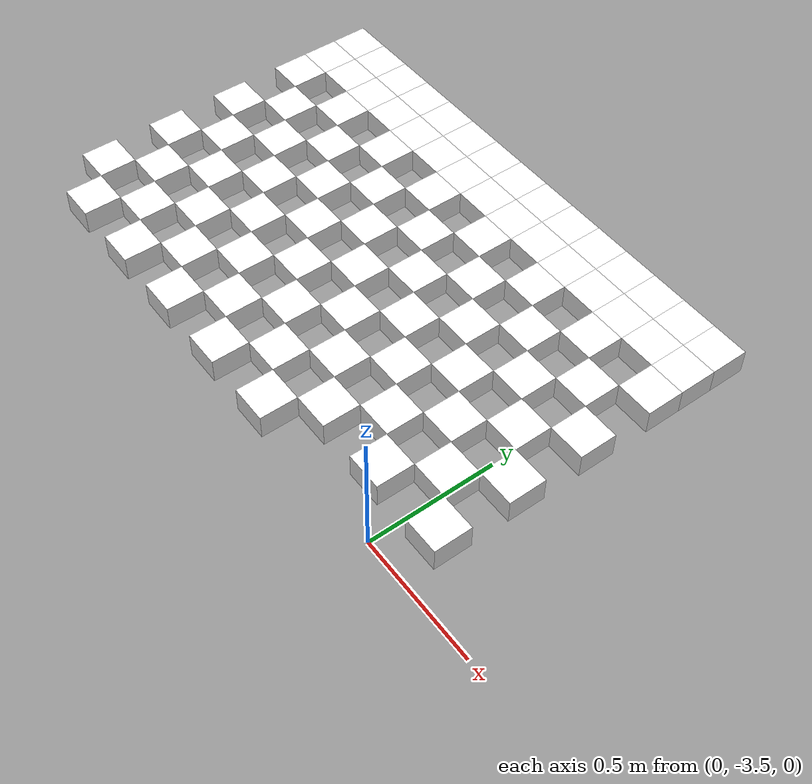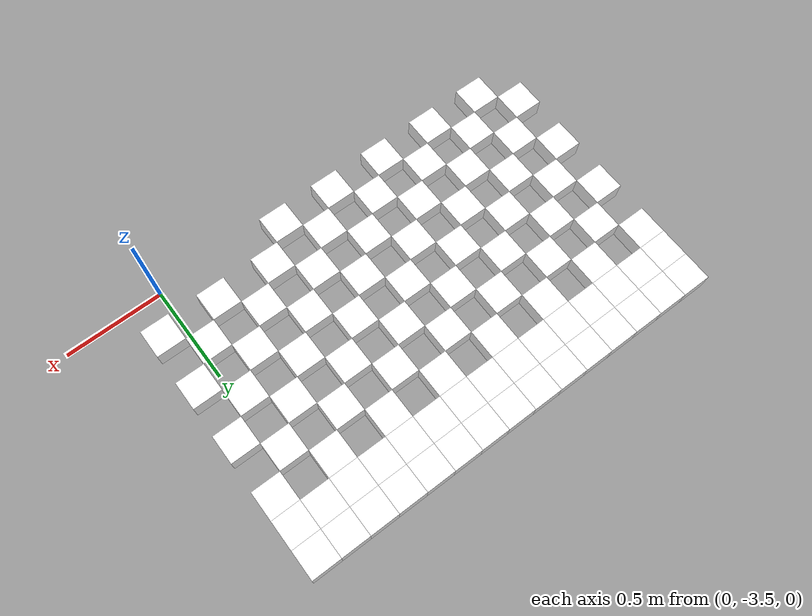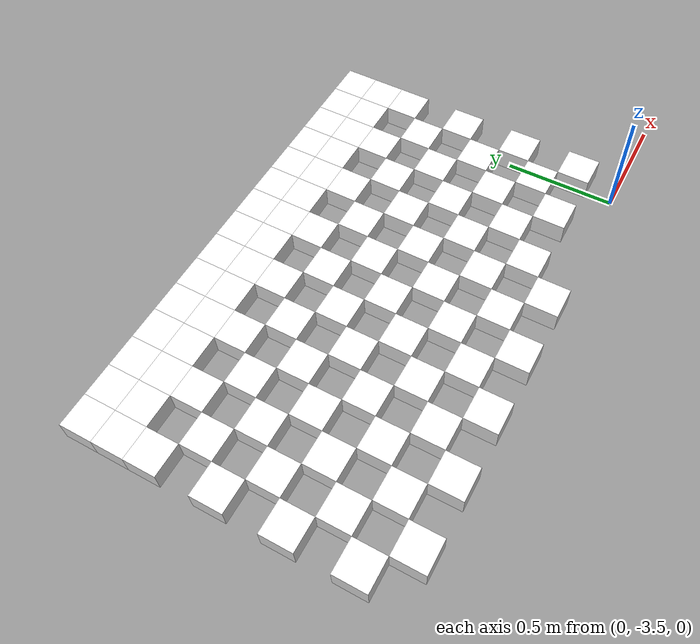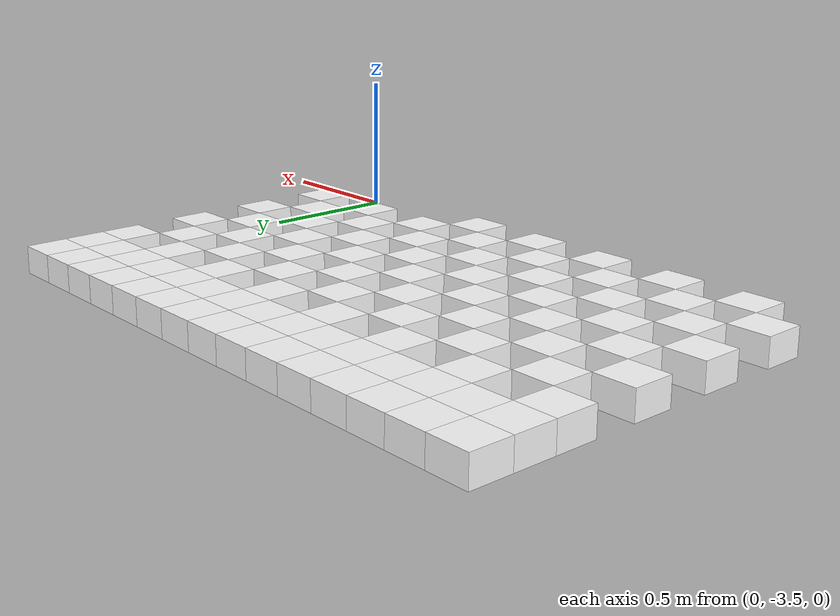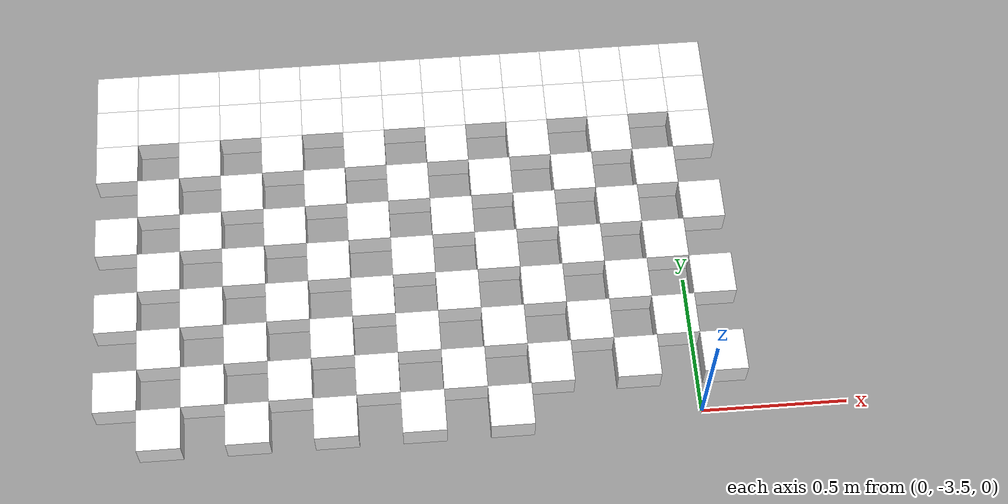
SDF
<sdf version="1.7">
 <world name="default">
  <include><uri>model://sun</uri></include>
  <model name="static_environment">
   <static>true</static>
   <link name="region_18">
    <pose>-2.0002402470383456 -2.099999989311362 0.0 0.0 0.0 4.7123</pose>
    <collision name="region_18_collision">
     <geometry><box><size>0.15 0.15 0.1</size></box></geometry>
     <surface><friction><ode><mu>1.0</mu><mu2>1.0</mu2></ode></friction></surface>
    </collision>
    <visual name="region_18_visual">
     <geometry><box><size>0.15 0.15 0.1</size></box></geometry>
     <material><ambient>1.0 1.0 1.0 1.0</ambient><diffuse>1.0 1.0 1.0 1.0</diffuse></material>
    </visual>
   </link>
   <link name="region_19">
    <pose>-2.0002535940960318 -2.2499999887175486 0.0 0.0 0.0 4.7123</pose>
    <collision name="region_19_collision">
     <geometry><box><size>0.15 0.15 0.1</size></box></geometry>
     <surface><friction><ode><mu>1.0</mu><mu2>1.0</mu2></ode></friction></surface>
    </collision>
    <visual name="region_19_visual">
     <geometry><box><size>0.15 0.15 0.1</size></box></geometry>
     <material><ambient>1.0 1.0 1.0 1.0</ambient><diffuse>1.0 1.0 1.0 1.0</diffuse></material>
    </visual>
   </link>
   <link name="region_38">
    <pose>-1.8502402476321589 -2.100013336369048 0.0 0.0 0.0 4.7123</pose>
    <collision name="region_38_collision">
     <geometry><box><size>0.15 0.15 0.1</size></box></geometry>
     <surface><friction><ode><mu>1.0</mu><mu2>1.0</mu2></ode></friction></surface>
    </collision>
    <visual name="region_38_visual">
     <geometry><box><size>0.15 0.15 0.1</size></box></geometry>
     <material><ambient>1.0 1.0 1.0 1.0</ambient><diffuse>1.0 1.0 1.0 1.0</diffuse></material>
    </visual>
   </link>
   <link name="region_39">
    <pose>-1.8502535946898448 -2.2500133357752343 0.0 0.0 0.0 4.7123</pose>
    <collision name="region_39_collision">
     <geometry><box><size>0.15 0.15 0.1</size></box></geometry>
     <surface><friction><ode><mu>1.0</mu><mu2>1.0</mu2></ode></friction></surface>
    </collision>
    <visual name="region_39_visual">
     <geometry><box><size>0.15 0.15 0.1</size></box></geometry>
     <material><ambient>1.0 1.0 1.0 1.0</ambient><diffuse>1.0 1.0 1.0 1.0</diffuse></material>
    </visual>
   </link>
   <link name="region_58">
    <pose>-1.7002402482259722 -2.1000266834267336 0.0 0.0 0.0 4.7123</pose>
    <collision name="region_58_collision">
     <geometry><box><size>0.15 0.15 0.1</size></box></geometry>
     <surface><friction><ode><mu>1.0</mu><mu2>1.0</mu2></ode></friction></surface>
    </collision>
    <visual name="region_58_visual">
     <geometry><box><size>0.15 0.15 0.1</size></box></geometry>
     <material><ambient>1.0 1.0 1.0 1.0</ambient><diffuse>1.0 1.0 1.0 1.0</diffuse></material>
    </visual>
   </link>
   <link name="region_59">
    <pose>-1.700253595283658 -2.2500266828329205 0.0 0.0 0.0 4.7123</pose>
    <collision name="region_59_collision">
     <geometry><box><size>0.15 0.15 0.1</size></box></geometry>
     <surface><friction><ode><mu>1.0</mu><mu2>1.0</mu2></ode></friction></surface>
    </collision>
    <visual name="region_59_visual">
     <geometry><box><size>0.15 0.15 0.1</size></box></geometry>
     <material><ambient>1.0 1.0 1.0 1.0</ambient><diffuse>1.0 1.0 1.0 1.0</diffuse></material>
    </visual>
   </link>
   <link name="region_78">
    <pose>-1.5502402488197853 -2.1000400304844193 0.0 0.0 0.0 4.7123</pose>
    <collision name="region_78_collision">
     <geometry><box><size>0.15 0.15 0.1</size></box></geometry>
     <surface><friction><ode><mu>1.0</mu><mu2>1.0</mu2></ode></friction></surface>
    </collision>
    <visual name="region_78_visual">
     <geometry><box><size>0.15 0.15 0.1</size></box></geometry>
     <material><ambient>1.0 1.0 1.0 1.0</ambient><diffuse>1.0 1.0 1.0 1.0</diffuse></material>
    </visual>
   </link>
   <link name="region_79">
    <pose>-1.5502535958774712 -2.2500400298906063 0.0 0.0 0.0 4.7123</pose>
    <collision name="region_79_collision">
     <geometry><box><size>0.15 0.15 0.1</size></box></geometry>
     <surface><friction><ode><mu>1.0</mu><mu2>1.0</mu2></ode></friction></surface>
    </collision>
    <visual name="region_79_visual">
     <geometry><box><size>0.15 0.15 0.1</size></box></geometry>
     <material><ambient>1.0 1.0 1.0 1.0</ambient><diffuse>1.0 1.0 1.0 1.0</diffuse></material>
    </visual>
   </link>
   <link name="region_98">
    <pose>-1.4002402494135986 -2.1000533775421055 0.0 0.0 0.0 4.7123</pose>
    <collision name="region_98_collision">
     <geometry><box><size>0.15 0.15 0.1</size></box></geometry>
     <surface><friction><ode><mu>1.0</mu><mu2>1.0</mu2></ode></friction></surface>
    </collision>
    <visual name="region_98_visual">
     <geometry><box><size>0.15 0.15 0.1</size></box></geometry>
     <material><ambient>1.0 1.0 1.0 1.0</ambient><diffuse>1.0 1.0 1.0 1.0</diffuse></material>
    </visual>
   </link>
   <link name="region_99">
    <pose>-1.4002535964712846 -2.250053376948292 0.0 0.0 0.0 4.7123</pose>
    <collision name="region_99_collision">
     <geometry><box><size>0.15 0.15 0.1</size></box></geometry>
     <surface><friction><ode><mu>1.0</mu><mu2>1.0</mu2></ode></friction></surface>
    </collision>
    <visual name="region_99_visual">
     <geometry><box><size>0.15 0.15 0.1</size></box></geometry>
     <material><ambient>1.0 1.0 1.0 1.0</ambient><diffuse>1.0 1.0 1.0 1.0</diffuse></material>
    </visual>
   </link>
   <link name="region_118">
    <pose>-1.2502402500074117 -2.1000667245997913 0.0 0.0 0.0 4.7123</pose>
    <collision name="region_118_collision">
     <geometry><box><size>0.15 0.15 0.1</size></box></geometry>
     <surface><friction><ode><mu>1.0</mu><mu2>1.0</mu2></ode></friction></surface>
    </collision>
    <visual name="region_118_visual">
     <geometry><box><size>0.15 0.15 0.1</size></box></geometry>
     <material><ambient>1.0 1.0 1.0 1.0</ambient><diffuse>1.0 1.0 1.0 1.0</diffuse></material>
    </visual>
   </link>
   <link name="region_119">
    <pose>-1.2502535970650976 -2.250066724005978 0.0 0.0 0.0 4.7123</pose>
    <collision name="region_119_collision">
     <geometry><box><size>0.15 0.15 0.1</size></box></geometry>
     <surface><friction><ode><mu>1.0</mu><mu2>1.0</mu2></ode></friction></surface>
    </collision>
    <visual name="region_119_visual">
     <geometry><box><size>0.15 0.15 0.1</size></box></geometry>
     <material><ambient>1.0 1.0 1.0 1.0</ambient><diffuse>1.0 1.0 1.0 1.0</diffuse></material>
    </visual>
   </link>
   <link name="region_138">
    <pose>-1.100240250601225 -2.100080071657477 0.0 0.0 0.0 4.7123</pose>
    <collision name="region_138_collision">
     <geometry><box><size>0.15 0.15 0.1</size></box></geometry>
     <surface><friction><ode><mu>1.0</mu><mu2>1.0</mu2></ode></friction></surface>
    </collision>
    <visual name="region_138_visual">
     <geometry><box><size>0.15 0.15 0.1</size></box></geometry>
     <material><ambient>1.0 1.0 1.0 1.0</ambient><diffuse>1.0 1.0 1.0 1.0</diffuse></material>
    </visual>
   </link>
   <link name="region_139">
    <pose>-1.1002535976589107 -2.250080071063664 0.0 0.0 0.0 4.7123</pose>
    <collision name="region_139_collision">
     <geometry><box><size>0.15 0.15 0.1</size></box></geometry>
     <surface><friction><ode><mu>1.0</mu><mu2>1.0</mu2></ode></friction></surface>
    </collision>
    <visual name="region_139_visual">
     <geometry><box><size>0.15 0.15 0.1</size></box></geometry>
     <material><ambient>1.0 1.0 1.0 1.0</ambient><diffuse>1.0 1.0 1.0 1.0</diffuse></material>
    </visual>
   </link>
   <link name="region_158">
    <pose>-0.9502402511950381 -2.100093418715163 0.0 0.0 0.0 4.7123</pose>
    <collision name="region_158_collision">
     <geometry><box><size>0.15 0.15 0.1</size></box></geometry>
     <surface><friction><ode><mu>1.0</mu><mu2>1.0</mu2></ode></friction></surface>
    </collision>
    <visual name="region_158_visual">
     <geometry><box><size>0.15 0.15 0.1</size></box></geometry>
     <material><ambient>1.0 1.0 1.0 1.0</ambient><diffuse>1.0 1.0 1.0 1.0</diffuse></material>
    </visual>
   </link>
   <link name="region_159">
    <pose>-0.9502535982527238 -2.2500934181213497 0.0 0.0 0.0 4.7123</pose>
    <collision name="region_159_collision">
     <geometry><box><size>0.15 0.15 0.1</size></box></geometry>
     <surface><friction><ode><mu>1.0</mu><mu2>1.0</mu2></ode></friction></surface>
    </collision>
    <visual name="region_159_visual">
     <geometry><box><size>0.15 0.15 0.1</size></box></geometry>
     <material><ambient>1.0 1.0 1.0 1.0</ambient><diffuse>1.0 1.0 1.0 1.0</diffuse></material>
    </visual>
   </link>
   <link name="region_178">
    <pose>-0.8002402517888514 -2.100106765772849 0.0 0.0 0.0 4.7123</pose>
    <collision name="region_178_collision">
     <geometry><box><size>0.15 0.15 0.1</size></box></geometry>
     <surface><friction><ode><mu>1.0</mu><mu2>1.0</mu2></ode></friction></surface>
    </collision>
    <visual name="region_178_visual">
     <geometry><box><size>0.15 0.15 0.1</size></box></geometry>
     <material><ambient>1.0 1.0 1.0 1.0</ambient><diffuse>1.0 1.0 1.0 1.0</diffuse></material>
    </visual>
   </link>
   <link name="region_179">
    <pose>-0.8002535988465371 -2.250106765179036 0.0 0.0 0.0 4.7123</pose>
    <collision name="region_179_collision">
     <geometry><box><size>0.15 0.15 0.1</size></box></geometry>
     <surface><friction><ode><mu>1.0</mu><mu2>1.0</mu2></ode></friction></surface>
    </collision>
    <visual name="region_179_visual">
     <geometry><box><size>0.15 0.15 0.1</size></box></geometry>
     <material><ambient>1.0 1.0 1.0 1.0</ambient><diffuse>1.0 1.0 1.0 1.0</diffuse></material>
    </visual>
   </link>
   <link name="region_198">
    <pose>-0.6502402523826645 -2.1001201128305347 0.0 0.0 0.0 4.7123</pose>
    <collision name="region_198_collision">
     <geometry><box><size>0.15 0.15 0.1</size></box></geometry>
     <surface><friction><ode><mu>1.0</mu><mu2>1.0</mu2></ode></friction></surface>
    </collision>
    <visual name="region_198_visual">
     <geometry><box><size>0.15 0.15 0.1</size></box></geometry>
     <material><ambient>1.0 1.0 1.0 1.0</ambient><diffuse>1.0 1.0 1.0 1.0</diffuse></material>
    </visual>
   </link>
   <link name="region_199">
    <pose>-0.6502535994403502 -2.2501201122367216 0.0 0.0 0.0 4.7123</pose>
    <collision name="region_199_collision">
     <geometry><box><size>0.15 0.15 0.1</size></box></geometry>
     <surface><friction><ode><mu>1.0</mu><mu2>1.0</mu2></ode></friction></surface>
    </collision>
    <visual name="region_199_visual">
     <geometry><box><size>0.15 0.15 0.1</size></box></geometry>
     <material><ambient>1.0 1.0 1.0 1.0</ambient><diffuse>1.0 1.0 1.0 1.0</diffuse></material>
    </visual>
   </link>
   <link name="region_218">
    <pose>-0.5002402529764778 -2.100133459888221 0.0 0.0 0.0 4.7123</pose>
    <collision name="region_218_collision">
     <geometry><box><size>0.15 0.15 0.1</size></box></geometry>
     <surface><friction><ode><mu>1.0</mu><mu2>1.0</mu2></ode></friction></surface>
    </collision>
    <visual name="region_218_visual">
     <geometry><box><size>0.15 0.15 0.1</size></box></geometry>
     <material><ambient>1.0 1.0 1.0 1.0</ambient><diffuse>1.0 1.0 1.0 1.0</diffuse></material>
    </visual>
   </link>
   <link name="region_219">
    <pose>-0.5002536000341635 -2.2501334592944073 0.0 0.0 0.0 4.7123</pose>
    <collision name="region_219_collision">
     <geometry><box><size>0.15 0.15 0.1</size></box></geometry>
     <surface><friction><ode><mu>1.0</mu><mu2>1.0</mu2></ode></friction></surface>
    </collision>
    <visual name="region_219_visual">
     <geometry><box><size>0.15 0.15 0.1</size></box></geometry>
     <material><ambient>1.0 1.0 1.0 1.0</ambient><diffuse>1.0 1.0 1.0 1.0</diffuse></material>
    </visual>
   </link>
   <link name="region_238">
    <pose>-0.3502402535702911 -2.1001468069459066 0.0 0.0 0.0 4.7123</pose>
    <collision name="region_238_collision">
     <geometry><box><size>0.15 0.15 0.1</size></box></geometry>
     <surface><friction><ode><mu>1.0</mu><mu2>1.0</mu2></ode></friction></surface>
    </collision>
    <visual name="region_238_visual">
     <geometry><box><size>0.15 0.15 0.1</size></box></geometry>
     <material><ambient>1.0 1.0 1.0 1.0</ambient><diffuse>1.0 1.0 1.0 1.0</diffuse></material>
    </visual>
   </link>
   <link name="region_239">
    <pose>-0.35025360062797684 -2.250146806352093 0.0 0.0 0.0 4.7123</pose>
    <collision name="region_239_collision">
     <geometry><box><size>0.15 0.15 0.1</size></box></geometry>
     <surface><friction><ode><mu>1.0</mu><mu2>1.0</mu2></ode></friction></surface>
    </collision>
    <visual name="region_239_visual">
     <geometry><box><size>0.15 0.15 0.1</size></box></geometry>
     <material><ambient>1.0 1.0 1.0 1.0</ambient><diffuse>1.0 1.0 1.0 1.0</diffuse></material>
    </visual>
   </link>
   <link name="region_258">
    <pose>-0.2002402541641044 -2.1001601540035923 0.0 0.0 0.0 4.7123</pose>
    <collision name="region_258_collision">
     <geometry><box><size>0.15 0.15 0.1</size></box></geometry>
     <surface><friction><ode><mu>1.0</mu><mu2>1.0</mu2></ode></friction></surface>
    </collision>
    <visual name="region_258_visual">
     <geometry><box><size>0.15 0.15 0.1</size></box></geometry>
     <material><ambient>1.0 1.0 1.0 1.0</ambient><diffuse>1.0 1.0 1.0 1.0</diffuse></material>
    </visual>
   </link>
   <link name="region_259">
    <pose>-0.20025360122179015 -2.2501601534097793 0.0 0.0 0.0 4.7123</pose>
    <collision name="region_259_collision">
     <geometry><box><size>0.15 0.15 0.1</size></box></geometry>
     <surface><friction><ode><mu>1.0</mu><mu2>1.0</mu2></ode></friction></surface>
    </collision>
    <visual name="region_259_visual">
     <geometry><box><size>0.15 0.15 0.1</size></box></geometry>
     <material><ambient>1.0 1.0 1.0 1.0</ambient><diffuse>1.0 1.0 1.0 1.0</diffuse></material>
    </visual>
   </link>
   <link name="region_278">
    <pose>-0.05024025475791771 -2.1001735010612785 0.0 0.0 0.0 4.7123</pose>
    <collision name="region_278_collision">
     <geometry><box><size>0.15 0.15 0.1</size></box></geometry>
     <surface><friction><ode><mu>1.0</mu><mu2>1.0</mu2></ode></friction></surface>
    </collision>
    <visual name="region_278_visual">
     <geometry><box><size>0.15 0.15 0.1</size></box></geometry>
     <material><ambient>1.0 1.0 1.0 1.0</ambient><diffuse>1.0 1.0 1.0 1.0</diffuse></material>
    </visual>
   </link>
   <link name="region_279">
    <pose>-0.050253601815603455 -2.250173500467465 0.0 0.0 0.0 4.7123</pose>
    <collision name="region_279_collision">
     <geometry><box><size>0.15 0.15 0.1</size></box></geometry>
     <surface><friction><ode><mu>1.0</mu><mu2>1.0</mu2></ode></friction></surface>
    </collision>
    <visual name="region_279_visual">
     <geometry><box><size>0.15 0.15 0.1</size></box></geometry>
     <material><ambient>1.0 1.0 1.0 1.0</ambient><diffuse>1.0 1.0 1.0 1.0</diffuse></material>
    </visual>
   </link>
   <link name="region_298">
    <pose>0.09975974464826942 -2.1001868481189643 0.0 0.0 0.0 4.7123</pose>
    <collision name="region_298_collision">
     <geometry><box><size>0.15 0.15 0.1</size></box></geometry>
     <surface><friction><ode><mu>1.0</mu><mu2>1.0</mu2></ode></friction></surface>
    </collision>
    <visual name="region_298_visual">
     <geometry><box><size>0.15 0.15 0.1</size></box></geometry>
     <material><ambient>1.0 1.0 1.0 1.0</ambient><diffuse>1.0 1.0 1.0 1.0</diffuse></material>
    </visual>
   </link>
   <link name="region_299">
    <pose>0.09974639759058324 -2.2501868475251507 0.0 0.0 0.0 4.7123</pose>
    <collision name="region_299_collision">
     <geometry><box><size>0.15 0.15 0.1</size></box></geometry>
     <surface><friction><ode><mu>1.0</mu><mu2>1.0</mu2></ode></friction></surface>
    </collision>
    <visual name="region_299_visual">
     <geometry><box><size>0.15 0.15 0.1</size></box></geometry>
     <material><ambient>1.0 1.0 1.0 1.0</ambient><diffuse>1.0 1.0 1.0 1.0</diffuse></material>
    </visual>
   </link>
   <link name="region_600">
    <pose>-2.0002669411537175 -2.3999999881237364 0.0 0.0 0.0 4.7123</pose>
    <collision name="region_600_collision">
     <geometry><box><size>0.15 0.15 0.1</size></box></geometry>
     <surface><friction><ode><mu>1.0</mu><mu2>1.0</mu2></ode></friction></surface>
    </collision>
    <visual name="region_600_visual">
     <geometry><box><size>0.15 0.15 0.1</size></box></geometry>
     <material><ambient>1.0 1.0 1.0 1.0</ambient><diffuse>1.0 1.0 1.0 1.0</diffuse></material>
    </visual>
   </link>
   <link name="region_601">
    <pose>-2.0002936352690894 -2.6999999869361098 0.0 0.0 0.0 4.7123</pose>
    <collision name="region_601_collision">
     <geometry><box><size>0.15 0.15 0.1</size></box></geometry>
     <surface><friction><ode><mu>1.0</mu><mu2>1.0</mu2></ode></friction></surface>
    </collision>
    <visual name="region_601_visual">
     <geometry><box><size>0.15 0.15 0.1</size></box></geometry>
     <material><ambient>1.0 1.0 1.0 1.0</ambient><diffuse>1.0 1.0 1.0 1.0</diffuse></material>
    </visual>
   </link>
   <link name="region_602">
    <pose>-2.000320329384461 -2.999999985748483 0.0 0.0 0.0 4.7123</pose>
    <collision name="region_602_collision">
     <geometry><box><size>0.15 0.15 0.1</size></box></geometry>
     <surface><friction><ode><mu>1.0</mu><mu2>1.0</mu2></ode></friction></surface>
    </collision>
    <visual name="region_602_visual">
     <geometry><box><size>0.15 0.15 0.1</size></box></geometry>
     <material><ambient>1.0 1.0 1.0 1.0</ambient><diffuse>1.0 1.0 1.0 1.0</diffuse></material>
    </visual>
   </link>
   <link name="region_603">
    <pose>-2.000347023499833 -3.2999999845608565 0.0 0.0 0.0 4.7123</pose>
    <collision name="region_603_collision">
     <geometry><box><size>0.15 0.15 0.1</size></box></geometry>
     <surface><friction><ode><mu>1.0</mu><mu2>1.0</mu2></ode></friction></surface>
    </collision>
    <visual name="region_603_visual">
     <geometry><box><size>0.15 0.15 0.1</size></box></geometry>
     <material><ambient>1.0 1.0 1.0 1.0</ambient><diffuse>1.0 1.0 1.0 1.0</diffuse></material>
    </visual>
   </link>
   <link name="region_605">
    <pose>-1.8502802888052166 -2.550013334587609 0.0 0.0 0.0 4.7123</pose>
    <collision name="region_605_collision">
     <geometry><box><size>0.15 0.15 0.1</size></box></geometry>
     <surface><friction><ode><mu>1.0</mu><mu2>1.0</mu2></ode></friction></surface>
    </collision>
    <visual name="region_605_visual">
     <geometry><box><size>0.15 0.15 0.1</size></box></geometry>
     <material><ambient>1.0 1.0 1.0 1.0</ambient><diffuse>1.0 1.0 1.0 1.0</diffuse></material>
    </visual>
   </link>
   <link name="region_606">
    <pose>-1.8503069829205883 -2.8500133333999824 0.0 0.0 0.0 4.7123</pose>
    <collision name="region_606_collision">
     <geometry><box><size>0.15 0.15 0.1</size></box></geometry>
     <surface><friction><ode><mu>1.0</mu><mu2>1.0</mu2></ode></friction></surface>
    </collision>
    <visual name="region_606_visual">
     <geometry><box><size>0.15 0.15 0.1</size></box></geometry>
     <material><ambient>1.0 1.0 1.0 1.0</ambient><diffuse>1.0 1.0 1.0 1.0</diffuse></material>
    </visual>
   </link>
   <link name="region_607">
    <pose>-1.8503336770359602 -3.150013332212356 0.0 0.0 0.0 4.7123</pose>
    <collision name="region_607_collision">
     <geometry><box><size>0.15 0.15 0.1</size></box></geometry>
     <surface><friction><ode><mu>1.0</mu><mu2>1.0</mu2></ode></friction></surface>
    </collision>
    <visual name="region_607_visual">
     <geometry><box><size>0.15 0.15 0.1</size></box></geometry>
     <material><ambient>1.0 1.0 1.0 1.0</ambient><diffuse>1.0 1.0 1.0 1.0</diffuse></material>
    </visual>
   </link>
   <link name="region_608">
    <pose>-1.850360371151332 -3.45001333102473 0.0 0.0 0.0 4.7123</pose>
    <collision name="region_608_collision">
     <geometry><box><size>0.15 0.15 0.1</size></box></geometry>
     <surface><friction><ode><mu>1.0</mu><mu2>1.0</mu2></ode></friction></surface>
    </collision>
    <visual name="region_608_visual">
     <geometry><box><size>0.15 0.15 0.1</size></box></geometry>
     <material><ambient>1.0 1.0 1.0 1.0</ambient><diffuse>1.0 1.0 1.0 1.0</diffuse></material>
    </visual>
   </link>
   <link name="region_610">
    <pose>-1.700266942341344 -2.400026682239108 0.0 0.0 0.0 4.7123</pose>
    <collision name="region_610_collision">
     <geometry><box><size>0.15 0.15 0.1</size></box></geometry>
     <surface><friction><ode><mu>1.0</mu><mu2>1.0</mu2></ode></friction></surface>
    </collision>
    <visual name="region_610_visual">
     <geometry><box><size>0.15 0.15 0.1</size></box></geometry>
     <material><ambient>1.0 1.0 1.0 1.0</ambient><diffuse>1.0 1.0 1.0 1.0</diffuse></material>
    </visual>
   </link>
   <link name="region_611">
    <pose>-1.7002936364567156 -2.7000266810514817 0.0 0.0 0.0 4.7123</pose>
    <collision name="region_611_collision">
     <geometry><box><size>0.15 0.15 0.1</size></box></geometry>
     <surface><friction><ode><mu>1.0</mu><mu2>1.0</mu2></ode></friction></surface>
    </collision>
    <visual name="region_611_visual">
     <geometry><box><size>0.15 0.15 0.1</size></box></geometry>
     <material><ambient>1.0 1.0 1.0 1.0</ambient><diffuse>1.0 1.0 1.0 1.0</diffuse></material>
    </visual>
   </link>
   <link name="region_612">
    <pose>-1.7003203305720875 -3.000026679863855 0.0 0.0 0.0 4.7123</pose>
    <collision name="region_612_collision">
     <geometry><box><size>0.15 0.15 0.1</size></box></geometry>
     <surface><friction><ode><mu>1.0</mu><mu2>1.0</mu2></ode></friction></surface>
    </collision>
    <visual name="region_612_visual">
     <geometry><box><size>0.15 0.15 0.1</size></box></geometry>
     <material><ambient>1.0 1.0 1.0 1.0</ambient><diffuse>1.0 1.0 1.0 1.0</diffuse></material>
    </visual>
   </link>
   <link name="region_613">
    <pose>-1.7003470246874592 -3.3000266786762285 0.0 0.0 0.0 4.7123</pose>
    <collision name="region_613_collision">
     <geometry><box><size>0.15 0.15 0.1</size></box></geometry>
     <surface><friction><ode><mu>1.0</mu><mu2>1.0</mu2></ode></friction></surface>
    </collision>
    <visual name="region_613_visual">
     <geometry><box><size>0.15 0.15 0.1</size></box></geometry>
     <material><ambient>1.0 1.0 1.0 1.0</ambient><diffuse>1.0 1.0 1.0 1.0</diffuse></material>
    </visual>
   </link>
   <link name="region_615">
    <pose>-1.550280289992843 -2.5500400287029805 0.0 0.0 0.0 4.7123</pose>
    <collision name="region_615_collision">
     <geometry><box><size>0.15 0.15 0.1</size></box></geometry>
     <surface><friction><ode><mu>1.0</mu><mu2>1.0</mu2></ode></friction></surface>
    </collision>
    <visual name="region_615_visual">
     <geometry><box><size>0.15 0.15 0.1</size></box></geometry>
     <material><ambient>1.0 1.0 1.0 1.0</ambient><diffuse>1.0 1.0 1.0 1.0</diffuse></material>
    </visual>
   </link>
   <link name="region_616">
    <pose>-1.5503069841082149 -2.850040027515354 0.0 0.0 0.0 4.7123</pose>
    <collision name="region_616_collision">
     <geometry><box><size>0.15 0.15 0.1</size></box></geometry>
     <surface><friction><ode><mu>1.0</mu><mu2>1.0</mu2></ode></friction></surface>
    </collision>
    <visual name="region_616_visual">
     <geometry><box><size>0.15 0.15 0.1</size></box></geometry>
     <material><ambient>1.0 1.0 1.0 1.0</ambient><diffuse>1.0 1.0 1.0 1.0</diffuse></material>
    </visual>
   </link>
   <link name="region_617">
    <pose>-1.5503336782235864 -3.1500400263277277 0.0 0.0 0.0 4.7123</pose>
    <collision name="region_617_collision">
     <geometry><box><size>0.15 0.15 0.1</size></box></geometry>
     <surface><friction><ode><mu>1.0</mu><mu2>1.0</mu2></ode></friction></surface>
    </collision>
    <visual name="region_617_visual">
     <geometry><box><size>0.15 0.15 0.1</size></box></geometry>
     <material><ambient>1.0 1.0 1.0 1.0</ambient><diffuse>1.0 1.0 1.0 1.0</diffuse></material>
    </visual>
   </link>
   <link name="region_618">
    <pose>-1.5503603723389583 -3.4500400251401016 0.0 0.0 0.0 4.7123</pose>
    <collision name="region_618_collision">
     <geometry><box><size>0.15 0.15 0.1</size></box></geometry>
     <surface><friction><ode><mu>1.0</mu><mu2>1.0</mu2></ode></friction></surface>
    </collision>
    <visual name="region_618_visual">
     <geometry><box><size>0.15 0.15 0.1</size></box></geometry>
     <material><ambient>1.0 1.0 1.0 1.0</ambient><diffuse>1.0 1.0 1.0 1.0</diffuse></material>
    </visual>
   </link>
   <link name="region_620">
    <pose>-1.4002669435289703 -2.40005337635448 0.0 0.0 0.0 4.7123</pose>
    <collision name="region_620_collision">
     <geometry><box><size>0.15 0.15 0.1</size></box></geometry>
     <surface><friction><ode><mu>1.0</mu><mu2>1.0</mu2></ode></friction></surface>
    </collision>
    <visual name="region_620_visual">
     <geometry><box><size>0.15 0.15 0.1</size></box></geometry>
     <material><ambient>1.0 1.0 1.0 1.0</ambient><diffuse>1.0 1.0 1.0 1.0</diffuse></material>
    </visual>
   </link>
   <link name="region_621">
    <pose>-1.4002936376443422 -2.700053375166853 0.0 0.0 0.0 4.7123</pose>
    <collision name="region_621_collision">
     <geometry><box><size>0.15 0.15 0.1</size></box></geometry>
     <surface><friction><ode><mu>1.0</mu><mu2>1.0</mu2></ode></friction></surface>
    </collision>
    <visual name="region_621_visual">
     <geometry><box><size>0.15 0.15 0.1</size></box></geometry>
     <material><ambient>1.0 1.0 1.0 1.0</ambient><diffuse>1.0 1.0 1.0 1.0</diffuse></material>
    </visual>
   </link>
   <link name="region_622">
    <pose>-1.4003203317597137 -3.0000533739792266 0.0 0.0 0.0 4.7123</pose>
    <collision name="region_622_collision">
     <geometry><box><size>0.15 0.15 0.1</size></box></geometry>
     <surface><friction><ode><mu>1.0</mu><mu2>1.0</mu2></ode></friction></surface>
    </collision>
    <visual name="region_622_visual">
     <geometry><box><size>0.15 0.15 0.1</size></box></geometry>
     <material><ambient>1.0 1.0 1.0 1.0</ambient><diffuse>1.0 1.0 1.0 1.0</diffuse></material>
    </visual>
   </link>
   <link name="region_623">
    <pose>-1.4003470258750856 -3.3000533727916 0.0 0.0 0.0 4.7123</pose>
    <collision name="region_623_collision">
     <geometry><box><size>0.15 0.15 0.1</size></box></geometry>
     <surface><friction><ode><mu>1.0</mu><mu2>1.0</mu2></ode></friction></surface>
    </collision>
    <visual name="region_623_visual">
     <geometry><box><size>0.15 0.15 0.1</size></box></geometry>
     <material><ambient>1.0 1.0 1.0 1.0</ambient><diffuse>1.0 1.0 1.0 1.0</diffuse></material>
    </visual>
   </link>
   <link name="region_625">
    <pose>-1.2502802911804691 -2.5500667228183524 0.0 0.0 0.0 4.7123</pose>
    <collision name="region_625_collision">
     <geometry><box><size>0.15 0.15 0.1</size></box></geometry>
     <surface><friction><ode><mu>1.0</mu><mu2>1.0</mu2></ode></friction></surface>
    </collision>
    <visual name="region_625_visual">
     <geometry><box><size>0.15 0.15 0.1</size></box></geometry>
     <material><ambient>1.0 1.0 1.0 1.0</ambient><diffuse>1.0 1.0 1.0 1.0</diffuse></material>
    </visual>
   </link>
   <link name="region_626">
    <pose>-1.250306985295841 -2.850066721630726 0.0 0.0 0.0 4.7123</pose>
    <collision name="region_626_collision">
     <geometry><box><size>0.15 0.15 0.1</size></box></geometry>
     <surface><friction><ode><mu>1.0</mu><mu2>1.0</mu2></ode></friction></surface>
    </collision>
    <visual name="region_626_visual">
     <geometry><box><size>0.15 0.15 0.1</size></box></geometry>
     <material><ambient>1.0 1.0 1.0 1.0</ambient><diffuse>1.0 1.0 1.0 1.0</diffuse></material>
    </visual>
   </link>
   <link name="region_627">
    <pose>-1.2503336794112128 -3.150066720443099 0.0 0.0 0.0 4.7123</pose>
    <collision name="region_627_collision">
     <geometry><box><size>0.15 0.15 0.1</size></box></geometry>
     <surface><friction><ode><mu>1.0</mu><mu2>1.0</mu2></ode></friction></surface>
    </collision>
    <visual name="region_627_visual">
     <geometry><box><size>0.15 0.15 0.1</size></box></geometry>
     <material><ambient>1.0 1.0 1.0 1.0</ambient><diffuse>1.0 1.0 1.0 1.0</diffuse></material>
    </visual>
   </link>
   <link name="region_628">
    <pose>-1.2503603735265845 -3.450066719255473 0.0 0.0 0.0 4.7123</pose>
    <collision name="region_628_collision">
     <geometry><box><size>0.15 0.15 0.1</size></box></geometry>
     <surface><friction><ode><mu>1.0</mu><mu2>1.0</mu2></ode></friction></surface>
    </collision>
    <visual name="region_628_visual">
     <geometry><box><size>0.15 0.15 0.1</size></box></geometry>
     <material><ambient>1.0 1.0 1.0 1.0</ambient><diffuse>1.0 1.0 1.0 1.0</diffuse></material>
    </visual>
   </link>
   <link name="region_630">
    <pose>-1.1002669447165965 -2.4000800704698517 0.0 0.0 0.0 4.7123</pose>
    <collision name="region_630_collision">
     <geometry><box><size>0.15 0.15 0.1</size></box></geometry>
     <surface><friction><ode><mu>1.0</mu><mu2>1.0</mu2></ode></friction></surface>
    </collision>
    <visual name="region_630_visual">
     <geometry><box><size>0.15 0.15 0.1</size></box></geometry>
     <material><ambient>1.0 1.0 1.0 1.0</ambient><diffuse>1.0 1.0 1.0 1.0</diffuse></material>
    </visual>
   </link>
   <link name="region_631">
    <pose>-1.1002936388319684 -2.700080069282225 0.0 0.0 0.0 4.7123</pose>
    <collision name="region_631_collision">
     <geometry><box><size>0.15 0.15 0.1</size></box></geometry>
     <surface><friction><ode><mu>1.0</mu><mu2>1.0</mu2></ode></friction></surface>
    </collision>
    <visual name="region_631_visual">
     <geometry><box><size>0.15 0.15 0.1</size></box></geometry>
     <material><ambient>1.0 1.0 1.0 1.0</ambient><diffuse>1.0 1.0 1.0 1.0</diffuse></material>
    </visual>
   </link>
   <link name="region_632">
    <pose>-1.10032033294734 -3.0000800680945985 0.0 0.0 0.0 4.7123</pose>
    <collision name="region_632_collision">
     <geometry><box><size>0.15 0.15 0.1</size></box></geometry>
     <surface><friction><ode><mu>1.0</mu><mu2>1.0</mu2></ode></friction></surface>
    </collision>
    <visual name="region_632_visual">
     <geometry><box><size>0.15 0.15 0.1</size></box></geometry>
     <material><ambient>1.0 1.0 1.0 1.0</ambient><diffuse>1.0 1.0 1.0 1.0</diffuse></material>
    </visual>
   </link>
   <link name="region_633">
    <pose>-1.1003470270627118 -3.300080066906972 0.0 0.0 0.0 4.7123</pose>
    <collision name="region_633_collision">
     <geometry><box><size>0.15 0.15 0.1</size></box></geometry>
     <surface><friction><ode><mu>1.0</mu><mu2>1.0</mu2></ode></friction></surface>
    </collision>
    <visual name="region_633_visual">
     <geometry><box><size>0.15 0.15 0.1</size></box></geometry>
     <material><ambient>1.0 1.0 1.0 1.0</ambient><diffuse>1.0 1.0 1.0 1.0</diffuse></material>
    </visual>
   </link>
   <link name="region_635">
    <pose>-0.9502802923680957 -2.550093416933724 0.0 0.0 0.0 4.7123</pose>
    <collision name="region_635_collision">
     <geometry><box><size>0.15 0.15 0.1</size></box></geometry>
     <surface><friction><ode><mu>1.0</mu><mu2>1.0</mu2></ode></friction></surface>
    </collision>
    <visual name="region_635_visual">
     <geometry><box><size>0.15 0.15 0.1</size></box></geometry>
     <material><ambient>1.0 1.0 1.0 1.0</ambient><diffuse>1.0 1.0 1.0 1.0</diffuse></material>
    </visual>
   </link>
   <link name="region_636">
    <pose>-0.9503069864834675 -2.8500934157460978 0.0 0.0 0.0 4.7123</pose>
    <collision name="region_636_collision">
     <geometry><box><size>0.15 0.15 0.1</size></box></geometry>
     <surface><friction><ode><mu>1.0</mu><mu2>1.0</mu2></ode></friction></surface>
    </collision>
    <visual name="region_636_visual">
     <geometry><box><size>0.15 0.15 0.1</size></box></geometry>
     <material><ambient>1.0 1.0 1.0 1.0</ambient><diffuse>1.0 1.0 1.0 1.0</diffuse></material>
    </visual>
   </link>
   <link name="region_637">
    <pose>-0.9503336805988392 -3.150093414558471 0.0 0.0 0.0 4.7123</pose>
    <collision name="region_637_collision">
     <geometry><box><size>0.15 0.15 0.1</size></box></geometry>
     <surface><friction><ode><mu>1.0</mu><mu2>1.0</mu2></ode></friction></surface>
    </collision>
    <visual name="region_637_visual">
     <geometry><box><size>0.15 0.15 0.1</size></box></geometry>
     <material><ambient>1.0 1.0 1.0 1.0</ambient><diffuse>1.0 1.0 1.0 1.0</diffuse></material>
    </visual>
   </link>
   <link name="region_638">
    <pose>-0.9503603747142109 -3.4500934133708445 0.0 0.0 0.0 4.7123</pose>
    <collision name="region_638_collision">
     <geometry><box><size>0.15 0.15 0.1</size></box></geometry>
     <surface><friction><ode><mu>1.0</mu><mu2>1.0</mu2></ode></friction></surface>
    </collision>
    <visual name="region_638_visual">
     <geometry><box><size>0.15 0.15 0.1</size></box></geometry>
     <material><ambient>1.0 1.0 1.0 1.0</ambient><diffuse>1.0 1.0 1.0 1.0</diffuse></material>
    </visual>
   </link>
   <link name="region_640">
    <pose>-0.8002669459042231 -2.400106764585223 0.0 0.0 0.0 4.7123</pose>
    <collision name="region_640_collision">
     <geometry><box><size>0.15 0.15 0.1</size></box></geometry>
     <surface><friction><ode><mu>1.0</mu><mu2>1.0</mu2></ode></friction></surface>
    </collision>
    <visual name="region_640_visual">
     <geometry><box><size>0.15 0.15 0.1</size></box></geometry>
     <material><ambient>1.0 1.0 1.0 1.0</ambient><diffuse>1.0 1.0 1.0 1.0</diffuse></material>
    </visual>
   </link>
   <link name="region_641">
    <pose>-0.8002936400195948 -2.7001067633975966 0.0 0.0 0.0 4.7123</pose>
    <collision name="region_641_collision">
     <geometry><box><size>0.15 0.15 0.1</size></box></geometry>
     <surface><friction><ode><mu>1.0</mu><mu2>1.0</mu2></ode></friction></surface>
    </collision>
    <visual name="region_641_visual">
     <geometry><box><size>0.15 0.15 0.1</size></box></geometry>
     <material><ambient>1.0 1.0 1.0 1.0</ambient><diffuse>1.0 1.0 1.0 1.0</diffuse></material>
    </visual>
   </link>
   <link name="region_642">
    <pose>-0.8003203341349665 -3.0001067622099704 0.0 0.0 0.0 4.7123</pose>
    <collision name="region_642_collision">
     <geometry><box><size>0.15 0.15 0.1</size></box></geometry>
     <surface><friction><ode><mu>1.0</mu><mu2>1.0</mu2></ode></friction></surface>
    </collision>
    <visual name="region_642_visual">
     <geometry><box><size>0.15 0.15 0.1</size></box></geometry>
     <material><ambient>1.0 1.0 1.0 1.0</ambient><diffuse>1.0 1.0 1.0 1.0</diffuse></material>
    </visual>
   </link>
   <link name="region_643">
    <pose>-0.8003470282503384 -3.300106761022344 0.0 0.0 0.0 4.7123</pose>
    <collision name="region_643_collision">
     <geometry><box><size>0.15 0.15 0.1</size></box></geometry>
     <surface><friction><ode><mu>1.0</mu><mu2>1.0</mu2></ode></friction></surface>
    </collision>
    <visual name="region_643_visual">
     <geometry><box><size>0.15 0.15 0.1</size></box></geometry>
     <material><ambient>1.0 1.0 1.0 1.0</ambient><diffuse>1.0 1.0 1.0 1.0</diffuse></material>
    </visual>
   </link>
   <link name="region_645">
    <pose>-0.6502802935557221 -2.550120111049096 0.0 0.0 0.0 4.7123</pose>
    <collision name="region_645_collision">
     <geometry><box><size>0.15 0.15 0.1</size></box></geometry>
     <surface><friction><ode><mu>1.0</mu><mu2>1.0</mu2></ode></friction></surface>
    </collision>
    <visual name="region_645_visual">
     <geometry><box><size>0.15 0.15 0.1</size></box></geometry>
     <material><ambient>1.0 1.0 1.0 1.0</ambient><diffuse>1.0 1.0 1.0 1.0</diffuse></material>
    </visual>
   </link>
   <link name="region_646">
    <pose>-0.6503069876710939 -2.8501201098614692 0.0 0.0 0.0 4.7123</pose>
    <collision name="region_646_collision">
     <geometry><box><size>0.15 0.15 0.1</size></box></geometry>
     <surface><friction><ode><mu>1.0</mu><mu2>1.0</mu2></ode></friction></surface>
    </collision>
    <visual name="region_646_visual">
     <geometry><box><size>0.15 0.15 0.1</size></box></geometry>
     <material><ambient>1.0 1.0 1.0 1.0</ambient><diffuse>1.0 1.0 1.0 1.0</diffuse></material>
    </visual>
   </link>
   <link name="region_647">
    <pose>-0.6503336817864656 -3.1501201086738426 0.0 0.0 0.0 4.7123</pose>
    <collision name="region_647_collision">
     <geometry><box><size>0.15 0.15 0.1</size></box></geometry>
     <surface><friction><ode><mu>1.0</mu><mu2>1.0</mu2></ode></friction></surface>
    </collision>
    <visual name="region_647_visual">
     <geometry><box><size>0.15 0.15 0.1</size></box></geometry>
     <material><ambient>1.0 1.0 1.0 1.0</ambient><diffuse>1.0 1.0 1.0 1.0</diffuse></material>
    </visual>
   </link>
   <link name="region_648">
    <pose>-0.6503603759018373 -3.450120107486217 0.0 0.0 0.0 4.7123</pose>
    <collision name="region_648_collision">
     <geometry><box><size>0.15 0.15 0.1</size></box></geometry>
     <surface><friction><ode><mu>1.0</mu><mu2>1.0</mu2></ode></friction></surface>
    </collision>
    <visual name="region_648_visual">
     <geometry><box><size>0.15 0.15 0.1</size></box></geometry>
     <material><ambient>1.0 1.0 1.0 1.0</ambient><diffuse>1.0 1.0 1.0 1.0</diffuse></material>
    </visual>
   </link>
   <link name="region_650">
    <pose>-0.5002669470918495 -2.400133458700595 0.0 0.0 0.0 4.7123</pose>
    <collision name="region_650_collision">
     <geometry><box><size>0.15 0.15 0.1</size></box></geometry>
     <surface><friction><ode><mu>1.0</mu><mu2>1.0</mu2></ode></friction></surface>
    </collision>
    <visual name="region_650_visual">
     <geometry><box><size>0.15 0.15 0.1</size></box></geometry>
     <material><ambient>1.0 1.0 1.0 1.0</ambient><diffuse>1.0 1.0 1.0 1.0</diffuse></material>
    </visual>
   </link>
   <link name="region_651">
    <pose>-0.5002936412072212 -2.7001334575129685 0.0 0.0 0.0 4.7123</pose>
    <collision name="region_651_collision">
     <geometry><box><size>0.15 0.15 0.1</size></box></geometry>
     <surface><friction><ode><mu>1.0</mu><mu2>1.0</mu2></ode></friction></surface>
    </collision>
    <visual name="region_651_visual">
     <geometry><box><size>0.15 0.15 0.1</size></box></geometry>
     <material><ambient>1.0 1.0 1.0 1.0</ambient><diffuse>1.0 1.0 1.0 1.0</diffuse></material>
    </visual>
   </link>
   <link name="region_652">
    <pose>-0.5003203353225929 -3.000133456325342 0.0 0.0 0.0 4.7123</pose>
    <collision name="region_652_collision">
     <geometry><box><size>0.15 0.15 0.1</size></box></geometry>
     <surface><friction><ode><mu>1.0</mu><mu2>1.0</mu2></ode></friction></surface>
    </collision>
    <visual name="region_652_visual">
     <geometry><box><size>0.15 0.15 0.1</size></box></geometry>
     <material><ambient>1.0 1.0 1.0 1.0</ambient><diffuse>1.0 1.0 1.0 1.0</diffuse></material>
    </visual>
   </link>
   <link name="region_653">
    <pose>-0.5003470294379648 -3.3001334551377153 0.0 0.0 0.0 4.7123</pose>
    <collision name="region_653_collision">
     <geometry><box><size>0.15 0.15 0.1</size></box></geometry>
     <surface><friction><ode><mu>1.0</mu><mu2>1.0</mu2></ode></friction></surface>
    </collision>
    <visual name="region_653_visual">
     <geometry><box><size>0.15 0.15 0.1</size></box></geometry>
     <material><ambient>1.0 1.0 1.0 1.0</ambient><diffuse>1.0 1.0 1.0 1.0</diffuse></material>
    </visual>
   </link>
   <link name="region_655">
    <pose>-0.35028029474334876 -2.550146805164468 0.0 0.0 0.0 4.7123</pose>
    <collision name="region_655_collision">
     <geometry><box><size>0.15 0.15 0.1</size></box></geometry>
     <surface><friction><ode><mu>1.0</mu><mu2>1.0</mu2></ode></friction></surface>
    </collision>
    <visual name="region_655_visual">
     <geometry><box><size>0.15 0.15 0.1</size></box></geometry>
     <material><ambient>1.0 1.0 1.0 1.0</ambient><diffuse>1.0 1.0 1.0 1.0</diffuse></material>
    </visual>
   </link>
   <link name="region_656">
    <pose>-0.35030698885872047 -2.850146803976841 0.0 0.0 0.0 4.7123</pose>
    <collision name="region_656_collision">
     <geometry><box><size>0.15 0.15 0.1</size></box></geometry>
     <surface><friction><ode><mu>1.0</mu><mu2>1.0</mu2></ode></friction></surface>
    </collision>
    <visual name="region_656_visual">
     <geometry><box><size>0.15 0.15 0.1</size></box></geometry>
     <material><ambient>1.0 1.0 1.0 1.0</ambient><diffuse>1.0 1.0 1.0 1.0</diffuse></material>
    </visual>
   </link>
   <link name="region_657">
    <pose>-0.3503336829740922 -3.1501468027892146 0.0 0.0 0.0 4.7123</pose>
    <collision name="region_657_collision">
     <geometry><box><size>0.15 0.15 0.1</size></box></geometry>
     <surface><friction><ode><mu>1.0</mu><mu2>1.0</mu2></ode></friction></surface>
    </collision>
    <visual name="region_657_visual">
     <geometry><box><size>0.15 0.15 0.1</size></box></geometry>
     <material><ambient>1.0 1.0 1.0 1.0</ambient><diffuse>1.0 1.0 1.0 1.0</diffuse></material>
    </visual>
   </link>
   <link name="region_660">
    <pose>-0.2002669482794761 -2.4001601528159666 0.0 0.0 0.0 4.7123</pose>
    <collision name="region_660_collision">
     <geometry><box><size>0.15 0.15 0.1</size></box></geometry>
     <surface><friction><ode><mu>1.0</mu><mu2>1.0</mu2></ode></friction></surface>
    </collision>
    <visual name="region_660_visual">
     <geometry><box><size>0.15 0.15 0.1</size></box></geometry>
     <material><ambient>1.0 1.0 1.0 1.0</ambient><diffuse>1.0 1.0 1.0 1.0</diffuse></material>
    </visual>
   </link>
   <link name="region_661">
    <pose>-0.20029364239484782 -2.7001601516283404 0.0 0.0 0.0 4.7123</pose>
    <collision name="region_661_collision">
     <geometry><box><size>0.15 0.15 0.1</size></box></geometry>
     <surface><friction><ode><mu>1.0</mu><mu2>1.0</mu2></ode></friction></surface>
    </collision>
    <visual name="region_661_visual">
     <geometry><box><size>0.15 0.15 0.1</size></box></geometry>
     <material><ambient>1.0 1.0 1.0 1.0</ambient><diffuse>1.0 1.0 1.0 1.0</diffuse></material>
    </visual>
   </link>
   <link name="region_662">
    <pose>-0.20032033651021952 -3.000160150440714 0.0 0.0 0.0 4.7123</pose>
    <collision name="region_662_collision">
     <geometry><box><size>0.15 0.15 0.1</size></box></geometry>
     <surface><friction><ode><mu>1.0</mu><mu2>1.0</mu2></ode></friction></surface>
    </collision>
    <visual name="region_662_visual">
     <geometry><box><size>0.15 0.15 0.1</size></box></geometry>
     <material><ambient>1.0 1.0 1.0 1.0</ambient><diffuse>1.0 1.0 1.0 1.0</diffuse></material>
    </visual>
   </link>
   <link name="region_663">
    <pose>-0.20034703062559145 -3.300160149253087 0.0 0.0 0.0 4.7123</pose>
    <collision name="region_663_collision">
     <geometry><box><size>0.15 0.15 0.1</size></box></geometry>
     <surface><friction><ode><mu>1.0</mu><mu2>1.0</mu2></ode></friction></surface>
    </collision>
    <visual name="region_663_visual">
     <geometry><box><size>0.15 0.15 0.1</size></box></geometry>
     <material><ambient>1.0 1.0 1.0 1.0</ambient><diffuse>1.0 1.0 1.0 1.0</diffuse></material>
    </visual>
   </link>
   <link name="region_665">
    <pose>-0.05028029593097538 -2.5501734992798393 0.0 0.0 0.0 4.7123</pose>
    <collision name="region_665_collision">
     <geometry><box><size>0.15 0.15 0.1</size></box></geometry>
     <surface><friction><ode><mu>1.0</mu><mu2>1.0</mu2></ode></friction></surface>
    </collision>
    <visual name="region_665_visual">
     <geometry><box><size>0.15 0.15 0.1</size></box></geometry>
     <material><ambient>1.0 1.0 1.0 1.0</ambient><diffuse>1.0 1.0 1.0 1.0</diffuse></material>
    </visual>
   </link>
   <link name="region_666">
    <pose>-0.05030699004634709 -2.8501734980922127 0.0 0.0 0.0 4.7123</pose>
    <collision name="region_666_collision">
     <geometry><box><size>0.15 0.15 0.1</size></box></geometry>
     <surface><friction><ode><mu>1.0</mu><mu2>1.0</mu2></ode></friction></surface>
    </collision>
    <visual name="region_666_visual">
     <geometry><box><size>0.15 0.15 0.1</size></box></geometry>
     <material><ambient>1.0 1.0 1.0 1.0</ambient><diffuse>1.0 1.0 1.0 1.0</diffuse></material>
    </visual>
   </link>
   <link name="region_667">
    <pose>-0.050333684161718795 -3.1501734969045865 0.0 0.0 0.0 4.7123</pose>
    <collision name="region_667_collision">
     <geometry><box><size>0.15 0.15 0.1</size></box></geometry>
     <surface><friction><ode><mu>1.0</mu><mu2>1.0</mu2></ode></friction></surface>
    </collision>
    <visual name="region_667_visual">
     <geometry><box><size>0.15 0.15 0.1</size></box></geometry>
     <material><ambient>1.0 1.0 1.0 1.0</ambient><diffuse>1.0 1.0 1.0 1.0</diffuse></material>
    </visual>
   </link>
   <link name="region_670">
    <pose>0.0997330505328975 -2.4001868469313385 0.0 0.0 0.0 4.7123</pose>
    <collision name="region_670_collision">
     <geometry><box><size>0.15 0.15 0.1</size></box></geometry>
     <surface><friction><ode><mu>1.0</mu><mu2>1.0</mu2></ode></friction></surface>
    </collision>
    <visual name="region_670_visual">
     <geometry><box><size>0.15 0.15 0.1</size></box></geometry>
     <material><ambient>1.0 1.0 1.0 1.0</ambient><diffuse>1.0 1.0 1.0 1.0</diffuse></material>
    </visual>
   </link>
   <link name="region_671">
    <pose>0.09970635641752557 -2.700186845743712 0.0 0.0 0.0 4.7123</pose>
    <collision name="region_671_collision">
     <geometry><box><size>0.15 0.15 0.1</size></box></geometry>
     <surface><friction><ode><mu>1.0</mu><mu2>1.0</mu2></ode></friction></surface>
    </collision>
    <visual name="region_671_visual">
     <geometry><box><size>0.15 0.15 0.1</size></box></geometry>
     <material><ambient>1.0 1.0 1.0 1.0</ambient><diffuse>1.0 1.0 1.0 1.0</diffuse></material>
    </visual>
   </link>
   <link name="region_672">
    <pose>0.09967966230215408 -3.0001868445560853 0.0 0.0 0.0 4.7123</pose>
    <collision name="region_672_collision">
     <geometry><box><size>0.15 0.15 0.1</size></box></geometry>
     <surface><friction><ode><mu>1.0</mu><mu2>1.0</mu2></ode></friction></surface>
    </collision>
    <visual name="region_672_visual">
     <geometry><box><size>0.15 0.15 0.1</size></box></geometry>
     <material><ambient>1.0 1.0 1.0 1.0</ambient><diffuse>1.0 1.0 1.0 1.0</diffuse></material>
    </visual>
   </link>
   <link name="region_673">
    <pose>0.09965296818678215 -3.300186843368459 0.0 0.0 0.0 4.7123</pose>
    <collision name="region_673_collision">
     <geometry><box><size>0.15 0.15 0.1</size></box></geometry>
     <surface><friction><ode><mu>1.0</mu><mu2>1.0</mu2></ode></friction></surface>
    </collision>
    <visual name="region_673_visual">
     <geometry><box><size>0.15 0.15 0.1</size></box></geometry>
     <material><ambient>1.0 1.0 1.0 1.0</ambient><diffuse>1.0 1.0 1.0 1.0</diffuse></material>
    </visual>
   </link>
  </model>
 </world>
</sdf>
